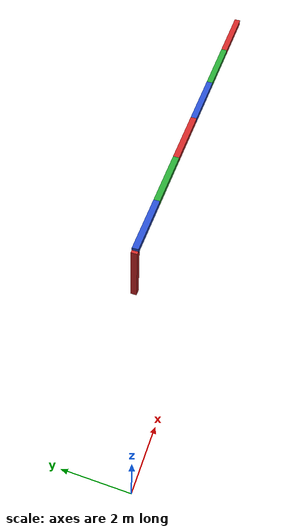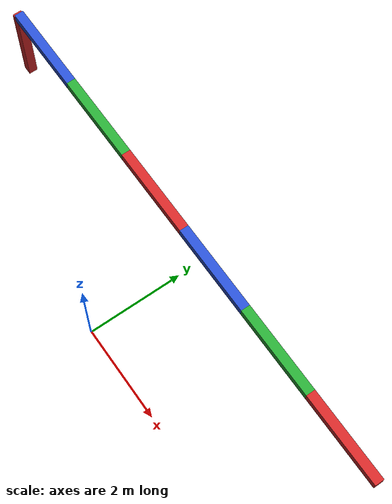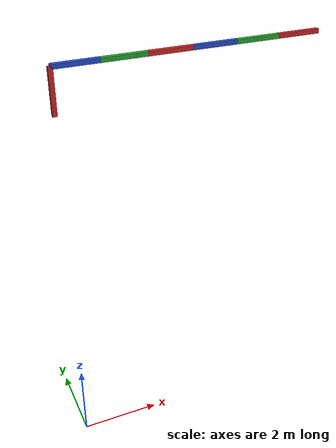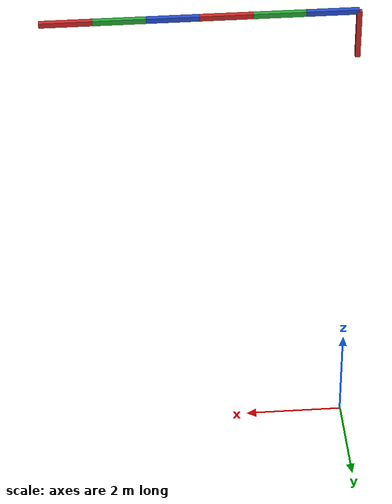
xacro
<?xml version="1.0"?>

<robot name="pr2"
       xmlns:xi="http://www.w3.org/2001/XInclude"
       xmlns:gazebo="http://playerstage.sourceforge.net/gazebo/xmlschema/#gz"
       xmlns:model="http://playerstage.sourceforge.net/gazebo/xmlschema/#model"
       xmlns:sensor="http://playerstage.sourceforge.net/gazebo/xmlschema/#sensor"
       xmlns:body="http://playerstage.sourceforge.net/gazebo/xmlschema/#body"
       xmlns:geom="http://playerstage.sourceforge.net/gazebo/xmlschema/#geom"
       xmlns:joint="http://playerstage.sourceforge.net/gazebo/xmlschema/#joint"
       xmlns:interface="http://playerstage.sourceforge.net/gazebo/xmlschema/#interface"
       xmlns:rendering="http://playerstage.sourceforge.net/gazebo/xmlschema/#rendering"
       xmlns:renderable="http://playerstage.sourceforge.net/gazebo/xmlschema/#renderable"
       xmlns:controller="http://playerstage.sourceforge.net/gazebo/xmlschema/#controller"
       xmlns:physics="http://playerstage.sourceforge.net/gazebo/xmlschema/#physics">

  <!-- joint blocks -->
  <link name="world"/>
  <joint name="base_block_joint" type="fixed" >
    <parent link="world" />
    <origin xyz="0 0 0.002" rpy="0 0 0" />
    <child link="base_block" />
  </joint>
  <link name="base_block">
    <inertial>
      <mass value="1000" />
      <origin xyz="0 0 0" />
      <inertia ixx="1000"  ixy="0"  ixz="0" iyy="1000" iyz="0" izz="1000" />
    </inertial>
    <visual>
      <origin xyz="0 0 0" rpy="0 0 0" />
      <geometry>
        <box size="0.001 0.001 0.001" />
      </geometry>
    </visual>
    <collision>
      <origin xyz="0 0 0" rpy="0.0 0.0 0.0" />
      <geometry>
        <box size="0.001 0.001 0.001" />
      </geometry>
    </collision>
  </link>
  <gazebo reference="base_block">
    <material>Gazebo/GrassFloor</material>
  </gazebo>

  <!-- joint blocks -->
  <joint name="link1_joint" type="revolute" >
    <axis xyz="0 0 1" />
    <limit lower="-.5" upper="0.5" effort="10" velocity="50" />
    <safety_controller soft_lower_limit="-.5" soft_upper_limit="0.5" k_position="100.0" k_velocity="100.0" />
    <dynamics damping="1000.0" />
    <parent link="base_block" />
    <origin xyz="0 0 10" rpy="0 0 0" />
    <child link="link1" />
  </joint>
  <link name="link1">
    <inertial >
      <mass value="100.0" />
      <origin xyz="0 0 -0.5" />
      <inertia  ixx="200.00" ixy="0.0"  ixz="0.0"  iyy="200.0"  iyz="0.0"  izz="100.0" />
    </inertial>
    <visual >
      <origin xyz="0 0 -0.5" rpy="0 0 0" />
      <geometry>
        <box size="0.1 0.1 1.0" />
      </geometry>
    </visual>
    <collision >
      <origin xyz="0 0 -0.5" rpy="0.0 0.0 0.0" />
      <geometry>
        <box size="0.1 0.1 1.0" />
      </geometry>
    </collision>
  </link>
  <gazebo reference="link1">
    <material>Gazebo/Red</material>
    <turnGravityOff>false</turnGravityOff>
  </gazebo>

  <!-- joint blocks -->
  <joint name="link2_joint" type="revolute" >
    <axis xyz="0 1 0" />
    <limit lower="-1" upper="2" effort="5000" velocity="50" />
    <safety_controller soft_lower_limit="-1" soft_upper_limit="2" k_position="100.0" k_velocity="100.0" />
    <dynamics damping="1000.0" />
    <parent link="link1" />
    <origin xyz="0.0 0 0" rpy="0 0 0" />
    <child link="link2" />
  </joint>
  <link name="link2">
    <inertial >
      <mass value="1" />
      <origin xyz="0.5 0 0" />
      <inertia  ixx="1.00" ixy="0.0"  ixz="0.0"  iyy="2.0"  iyz="0.0"  izz="2.0" />
    </inertial>
    <visual >
      <origin xyz="0.5 0 0" rpy="0 0 0" />
      <geometry>
        <box size="1.0 0.1 0.1" />
      </geometry>
    </visual>
    <collision >
      <origin xyz="0.5 0 0" rpy="0.0 0.0 0.0" />
      <geometry>
        <box size="1.0 0.1 0.1" />
      </geometry>
    </collision>
  </link>
  <gazebo reference="link2">
    <material>Gazebo/Blue</material>
    <turnGravityOff>false</turnGravityOff>
  </gazebo>

  <!-- joint blocks -->
  <joint name="link3_joint" type="revolute" >
    <axis xyz="0 1 0" />
    <limit lower="-1" upper="2" effort="5000" velocity="50" />
    <safety_controller soft_lower_limit="-1" soft_upper_limit="2" k_position="100.0" k_velocity="100.0" />
    <dynamics damping="1000.0" />
    <parent link="link2" />
    <origin xyz="1.0 0 0" rpy="0 0 0" />
    <child link="link3" />
  </joint>
  <link name="link3">
    <inertial >
      <mass value="1" />
      <origin xyz="0.5 0 0" />
      <inertia  ixx="1.00" ixy="0.0"  ixz="0.0"  iyy="2.0"  iyz="0.0"  izz="2.0" />
    </inertial>
    <visual >
      <origin xyz="0.5 0 0" rpy="0 0 0" />
      <geometry>
        <box size="1.0 0.1 0.1" />
      </geometry>
    </visual>
    <collision >
      <origin xyz="0.5 0 0" rpy="0.0 0.0 0.0" />
      <geometry>
        <box size="1.0 0.1 0.1" />
      </geometry>
    </collision>
  </link>
  <gazebo reference="link3">
    <material>Gazebo/Green</material>
    <turnGravityOff>false</turnGravityOff>
  </gazebo>

  <!-- joint blocks -->
  <joint name="link4_joint" type="revolute" >
    <axis xyz="0 1 0" />
    <limit lower="-1" upper="2" effort="2000" velocity="50" />
    <safety_controller soft_lower_limit="-1" soft_upper_limit="2" k_position="100.0" k_velocity="100.0" />
    <dynamics damping="1000.0" />
    <parent link="link3" />
    <origin xyz="1.0 0 0" rpy="0 0 0" />
    <child link="link4" />
  </joint>
  <link name="link4">
    <inertial >
      <mass value="1" />
      <origin xyz="0.5 0 0" />
      <inertia  ixx="1.00" ixy="0.0"  ixz="0.0"  iyy="2.0"  iyz="0.0"  izz="2.0" />
    </inertial>
    <visual >
      <origin xyz="0.5 0 0" rpy="0 0 0" />
      <geometry>
        <box size="1.0 0.1 0.1" />
      </geometry>
    </visual>
    <collision >
      <origin xyz="0.5 0 0" rpy="0.0 0.0 0.0" />
      <geometry>
        <box size="1.0 0.1 0.1" />
      </geometry>
    </collision>
  </link>
  <gazebo reference="link4">
    <material>Gazebo/Red</material>
    <turnGravityOff>false</turnGravityOff>
  </gazebo>

  <!-- joint blocks -->
  <joint name="link5_joint" type="revolute" >
    <axis xyz="0 1 0" />
    <limit lower="-1" upper="2" effort="500" velocity="50" />
    <safety_controller soft_lower_limit="-1" soft_upper_limit="2" k_position="100.0" k_velocity="100.0" />
    <dynamics damping="100.0" />
    <parent link="link4" />
    <origin xyz="1.0 0 0" rpy="0 0 0" />
    <child link="link5" />
  </joint>
  <link name="link5">
    <inertial >
      <mass value="1" />
      <origin xyz="0.5 0 0" />
      <inertia  ixx="1.00" ixy="0.0"  ixz="0.0"  iyy="2.0"  iyz="0.0"  izz="2.0" />
    </inertial>
    <visual >
      <origin xyz="0.5 0 0" rpy="0 0 0" />
      <geometry>
        <box size="1.0 0.1 0.1" />
      </geometry>
    </visual>
    <collision >
      <origin xyz="0.5 0 0" rpy="0.0 0.0 0.0" />
      <geometry>
        <box size="1.0 0.1 0.1" />
      </geometry>
    </collision>
  </link>
  <gazebo reference="link5">
    <material>Gazebo/Blue</material>
    <turnGravityOff>false</turnGravityOff>
  </gazebo>

  <!-- joint blocks -->
  <joint name="link6_joint" type="revolute" >
    <axis xyz="0 1 0" />
    <limit lower="-1" upper="2" effort="100" velocity="50" />
    <safety_controller soft_lower_limit="-1" soft_upper_limit="2" k_position="100.0" k_velocity="100.0" />
    <dynamics damping="100.0" />
    <parent link="link5" />
    <origin xyz="1.0 0 0" rpy="0 0 0" />
    <child link="link6" />
  </joint>
  <link name="link6">
    <inertial >
      <mass value="1" />
      <origin xyz="0.5 0 0" />
      <inertia  ixx="1.00" ixy="0.0"  ixz="0.0"  iyy="2.0"  iyz="0.0"  izz="2.0" />
    </inertial>
    <visual >
      <origin xyz="0.5 0 0" rpy="0 0 0" />
      <geometry>
        <box size="1.0 0.1 0.1" />
      </geometry>
    </visual>
    <collision >
      <origin xyz="0.5 0 0" rpy="0.0 0.0 0.0" />
      <geometry>
        <box size="1.0 0.1 0.1" />
      </geometry>
    </collision>
  </link>
  <gazebo reference="link6">
    <material>Gazebo/Green</material>
    <turnGravityOff>false</turnGravityOff>
  </gazebo>

  <!-- joint blocks -->
  <joint name="link7_joint" type="revolute" >
    <axis xyz="0 1 0" />
    <limit lower="-1" upper="2" effort="100" velocity="50" />
    <safety_controller soft_lower_limit="-1" soft_upper_limit="2" k_position="100.0" k_velocity="100.0" />
    <dynamics damping="10.0" />
    <parent link="link6" />
    <origin xyz="1.0 0 0" rpy="0 0 0" />
    <child link="link7" />
  </joint>
  <link name="link7">
    <inertial >
      <mass value="1" />
      <origin xyz="0.5 0 0" />
      <inertia  ixx="1.00" ixy="0.0"  ixz="0.0"  iyy="2.0"  iyz="0.0"  izz="2.0" />
    </inertial>
    <visual >
      <origin xyz="0.5 0 0" rpy="0 0 0" />
      <geometry>
        <box size="1.0 0.1 0.1" />
      </geometry>
    </visual>
    <collision >
      <origin xyz="0.5 0 0" rpy="0.0 0.0 0.0" />
      <geometry>
        <box size="1.0 0.1 0.1" />
      </geometry>
    </collision>
  </link>
  <gazebo reference="link7">
    <material>Gazebo/Red</material>
    <turnGravityOff>false</turnGravityOff>
  </gazebo>

  <!-- mechanism controls -->
  <include filename="./multi_link.transmission.xacro" />

  <gazebo>
      <!-- PR2_ACTARRAY -->
      <controller:gazebo_ros_controller_manager name="gazebo_ros_controller_manager" plugin="libgazebo_ros_controller_manager.so">
        <alwaysOn>true</alwaysOn>
        <updateRate>1000.0</updateRate>
      </controller:gazebo_ros_controller_manager>

      <!-- gazebo_ros_p3d for position groundtruth -->
      <controller:gazebo_ros_p3d name="p3d_link3_controller" plugin="libgazebo_ros_p3d.so">
          <alwaysOn>true</alwaysOn>
          <updateRate>1000.0</updateRate>
          <bodyName>link3</bodyName>
          <topicName>link3_pose</topicName>
          <frameName>map</frameName>
          <interface:position name="p3d_link3_position"/>
      </controller:gazebo_ros_p3d>
  </gazebo>

</robot>
